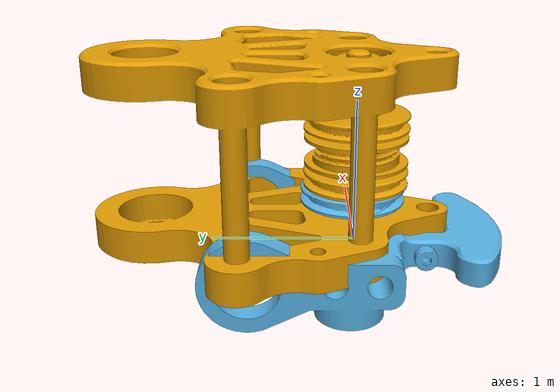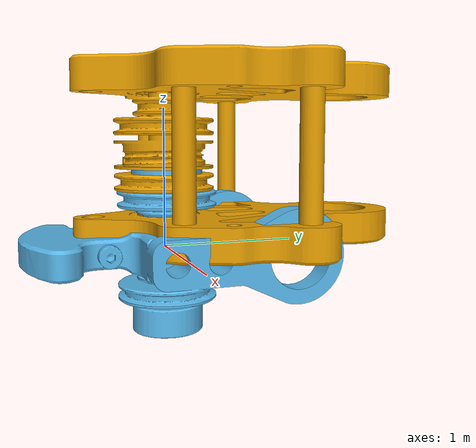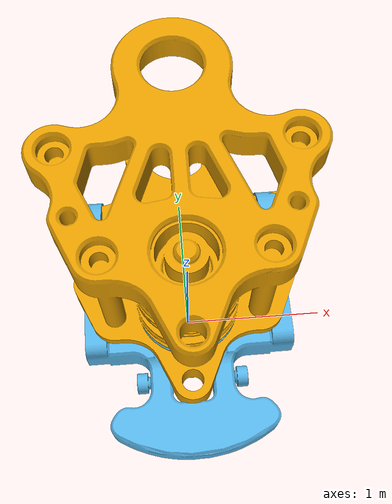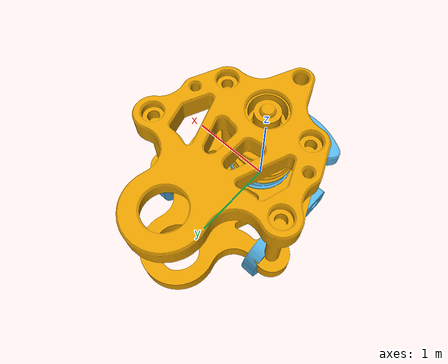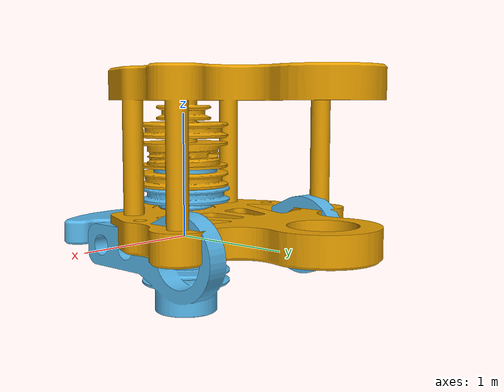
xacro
<?xml version="1.0"?>
<robot name="finger">

  <!-- Generated by urdf_blender_export.py from Blender scene /home/michael-jenz/rds_ws/finger_vizualization/src/drake-finger-sim/blender_files/rds_finger2.blend -->

  <material name="blue">
    <color rgba="0 0 1 1"/>
  </material>
  <material name="green">
    <color rgba="0 1 0 1"/>
  </material>
  <material name="red">
    <color rgba="1 0 0 1"/>
  </material>
  <material name="purple">
    <color rgba="1 0 1 1"/>
  </material>
  <material name="grey">
    <color rgba="0.5 0.5 0.5 1"/>
  </material>
  <material name="yellow">
    <color rgba="1 1 0 1"/>
  </material>

  <!-- Finger base -->
  <link name="base_link">
    <visual>
      <geometry>
        <mesh filename="package://finger_description/meshes/visual/base_link.stl"/>
      </geometry>
    </visual>
    <collision>
      <geometry>
        <mesh filename="package://finger_description/meshes/collision/col_base_link.stl"/>
      </geometry>
    </collision>
    <inertial>
      <mass value="0.05"/>
      <origin xyz="0 0 0" rpy="0 0 0"/>
      <inertia ixx="1e-05" ixy="0" ixz="0" iyy="1e-05" iyz="0" izz="1e-05"/>
    </inertial>
  </link>

  <!-- Mcp Splay -->
  <joint name="mcp_splay" type="revolute">
    <parent link="base_link"/>
    <child link="mcp_link"/>
    <origin xyz="0.0 0.0196 0.017" rpy="0 0 0"/>
    <axis xyz="0.0 0.0 1.0"/>
    <limit lower="-0.174533" upper="0.174533" effort="5.0" velocity="3.14"/>
    <dynamics damping="0.1" friction="0.05"/>
  </joint>

  <!-- Space between MCP splay and flexion -->
  <link name="mcp_link">
    <visual>
      <geometry>
        <mesh filename="package://finger_description/meshes/visual/mcp_link.stl"/>
      </geometry>
    </visual>
    <collision>
      <geometry>
        <mesh filename="package://finger_description/meshes/collision/col_mcp_link.stl"/>
      </geometry>
    </collision>
    <inertial>
      <mass value="0.01"/>
      <origin xyz="0 0 0" rpy="0 0 0"/>
      <inertia ixx="1e-05" ixy="0" ixz="0" iyy="1e-05" iyz="0" izz="1e-05"/>
    </inertial>
  </link>

  <!-- Mcp Flexion -->
  <joint name="mcp_flexion" type="revolute">
    <parent link="mcp_link"/>
    <child link="proximal_phalanx"/>
    <origin xyz="-0.0 0.0177 0.0" rpy="0 0 0"/>
    <axis xyz="-1.0 0.0 0.0"/>
    <limit lower="0.0" upper="1.57" effort="5.0" velocity="3.14"/>
    <dynamics damping="0.1" friction="0.05"/>
  </joint>

  <!-- Proximal phalanx -->
  <link name="proximal_phalanx">
    <visual>
      <geometry>
        <mesh filename="package://finger_description/meshes/visual/proximal_phalanx.stl"/>
      </geometry>
    </visual>
    <collision>
      <geometry>
        <mesh filename="package://finger_description/meshes/collision/col_proximal_phalanx.stl"/>
      </geometry>
    </collision>
    <inertial>
      <mass value="0.01"/>
      <origin xyz="0 0 0" rpy="0 0 0"/>
      <inertia ixx="1e-05" ixy="0" ixz="0" iyy="1e-05" iyz="0" izz="1e-05"/>
    </inertial>
  </link>

  <!-- Pip Flexion -->
  <joint name="pip_flexion" type="revolute">
    <parent link="proximal_phalanx"/>
    <child link="middle_phalanx"/>
    <origin xyz="-0.0001 0.0612 -0.0017" rpy="0 0 0"/>
    <axis xyz="-1.0 0.0 0.0"/>
    <limit lower="0.0" upper="1.57" effort="5.0" velocity="3.14"/>
    <dynamics damping="0.1" friction="0.05"/>
  </joint>

  <!-- Middle phalanx -->
  <link name="middle_phalanx">
    <visual>
      <geometry>
        <mesh filename="package://finger_description/meshes/visual/middle_phalanx.stl"/>
      </geometry>
    </visual>
    <collision>
      <geometry>
        <mesh filename="package://finger_description/meshes/collision/col_middle_phalanx.stl"/>
      </geometry>
    </collision>
    <inertial>
      <mass value="0.008"/>
      <origin xyz="0 0 0" rpy="0 0 0"/>
      <inertia ixx="5e-06" ixy="0" ixz="0" iyy="5e-06" iyz="0" izz="5e-06"/>
    </inertial>
  </link>

  <!-- Dip Flexion -->
  <joint name="dip_flexion" type="revolute">
    <parent link="middle_phalanx"/>
    <child link="distal_phalanx"/>
    <origin xyz="0.0036 0.0406 -0.0023" rpy="0 0 0"/>
    <axis xyz="-1.0 0.0 0.0"/>
    <limit lower="0.0" upper="1.57" effort="3.0" velocity="3.14"/>
    <dynamics damping="0.1" friction="0.05"/>
    <mimic joint="pip_flexion" multiplier="0.85" offset="0.0"/>
  </joint>

  <!-- Distal phalanx -->
  <link name="distal_phalanx">
    <visual>
      <geometry>
        <mesh filename="package://finger_description/meshes/visual/distal_phalanx.stl"/>
      </geometry>
    </visual>
    <collision>
      <geometry>
        <mesh filename="package://finger_description/meshes/collision/col_distal_phalanx.stl"/>
      </geometry>
    </collision>
    <inertial>
      <mass value="0.005"/>
      <origin xyz="0 0 0" rpy="0 0 0"/>
      <inertia ixx="2e-06" ixy="0" ixz="0" iyy="2e-06" iyz="0" izz="2e-06"/>
    </inertial>
  </link>

</robot>
